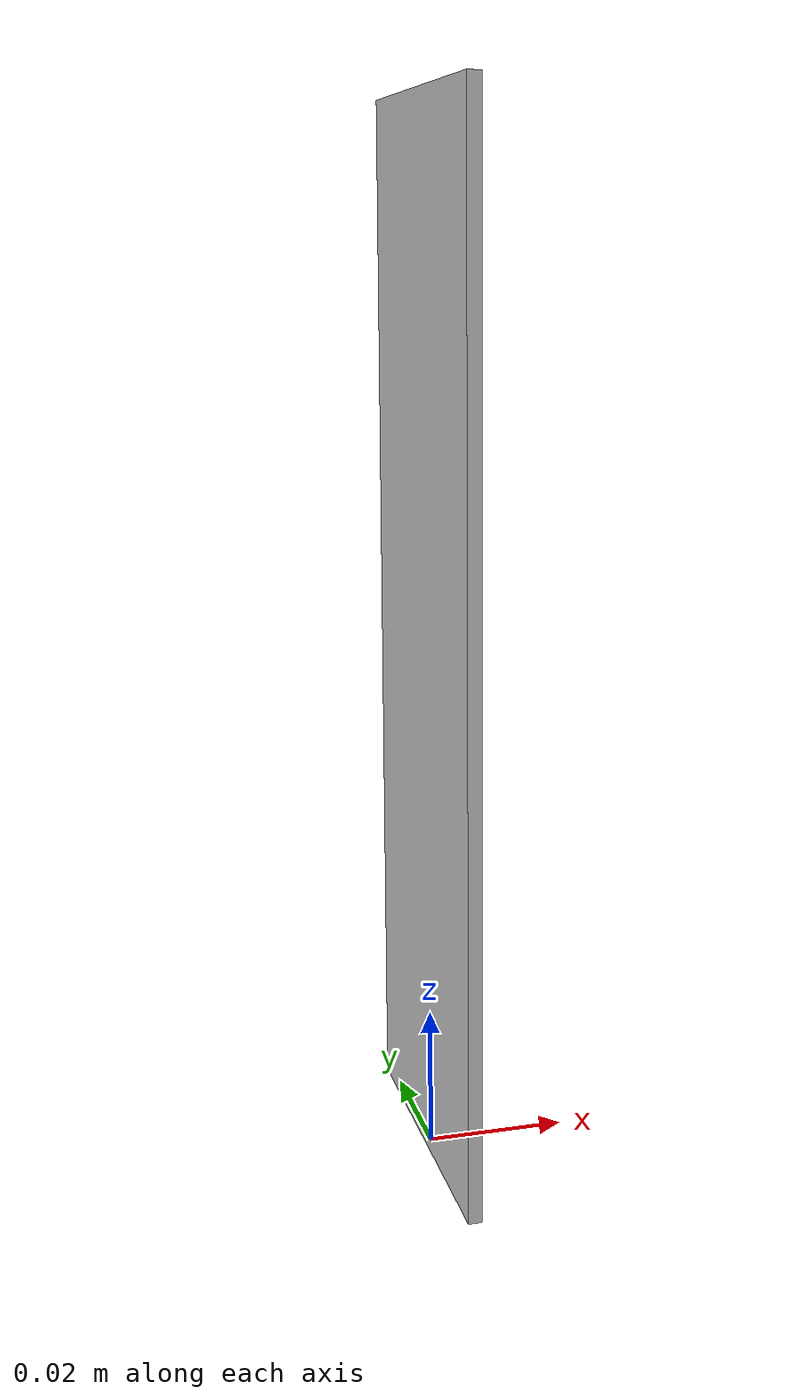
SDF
<?xml version="1.0"?>
<sdf version="1.6">
  <model name="thin_plate">
    <static>false</static>

    <link name="plate_link">
      <!-- 抬到地面上方，使底面贴地 -->
      <pose>0 0 0.075 0 0 0</pose>

      <inertial>
        <mass>0.03</mass>
        <inertia>
          <ixx>0.00039375</ixx>
          <iyy>0.00033750</iyy>
          <izz>0.00006375</izz>
          <ixy>0</ixy>
          <ixz>0</ixz>
          <iyz>0</iyz>
        </inertia>
      </inertial>

      <collision name="plate_collision">
        <geometry>
          <box>
            <size>0.002 0.05 0.15</size>
          </box>
        </geometry>
      </collision>

      <visual name="plate_visual">
        <geometry>
          <box>
            <size>0.002 0.05 0.15</size>
          </box>
        </geometry>
        <!-- 不指定 material，使用 Gazebo 默认颜色 -->
      </visual>
    </link>
  </model>
</sdf>
